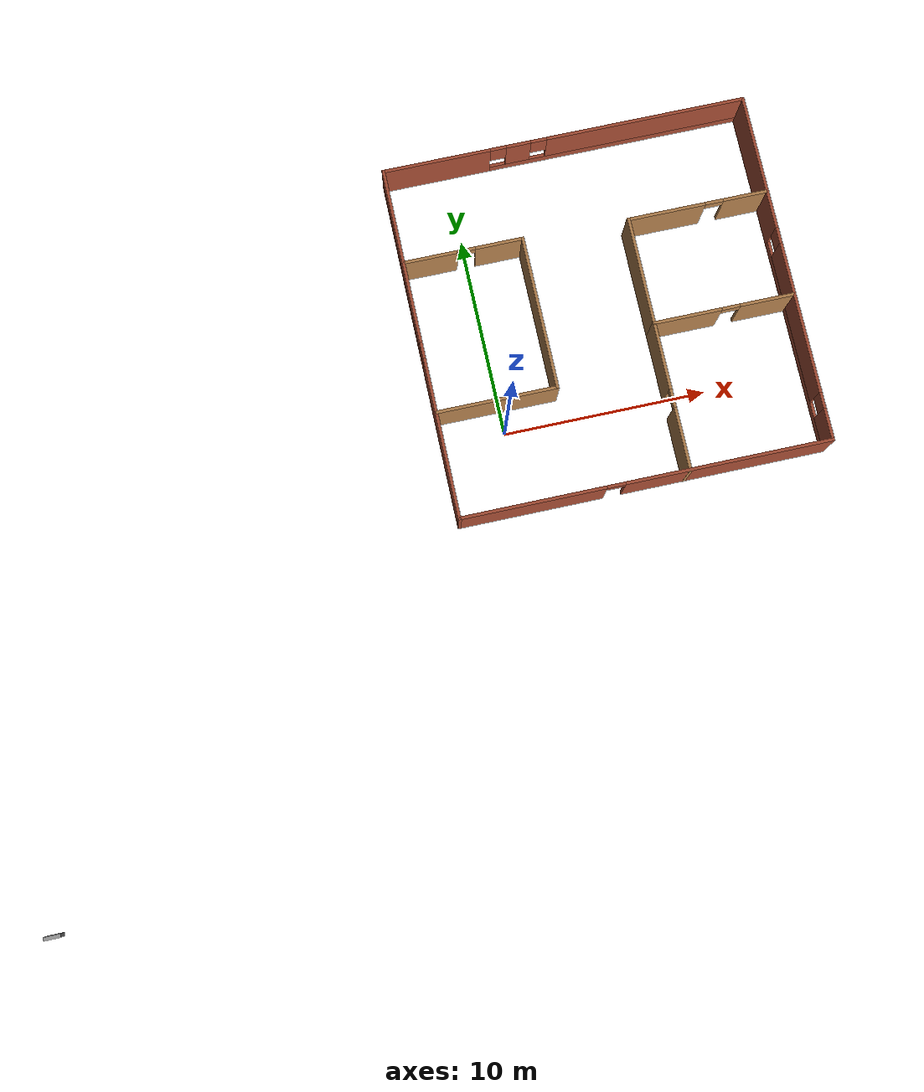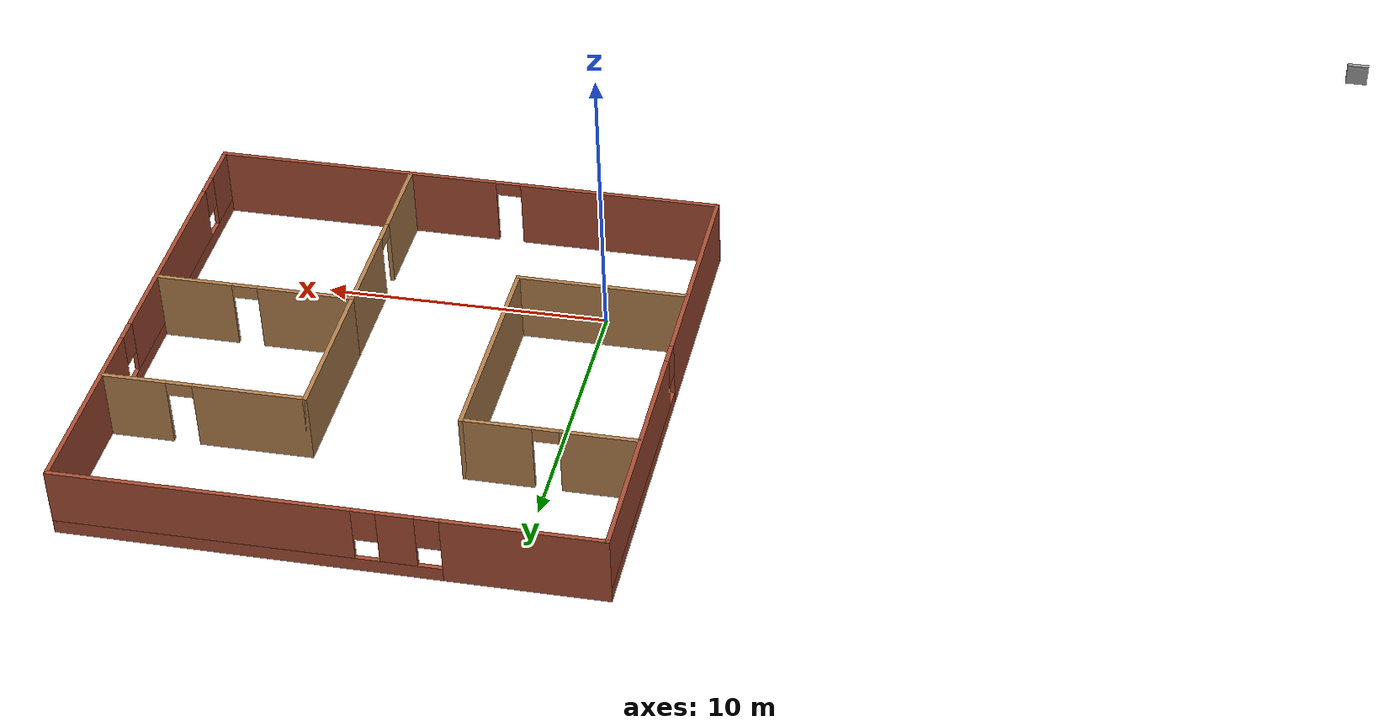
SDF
<?xml version='1.0'?>
<sdf version='1.6'>
  <model name='model'>
    <pose frame=''>5.88 4.74639 0 0 -0 0</pose>
    <link name='Wall_0'>
      <pose frame=''>-9.05 0.003615 0 0 -0 1.5708</pose>
      <visual name='Wall_0_Visual_0'>
        <pose frame=''>-4.85577 0 1.25 0 -0 0</pose>
        <geometry>
          <box>
            <size>8.03845 0.15 2.5</size>
          </box>
        </geometry>
        <material>
          <script>
            <uri>file://media/materials/scripts/gazebo.material</uri>
            <name>Gazebo/Bricks</name>
          </script>
          <ambient>0.435294 0.796078 0.67451 1</ambient>
        </material>
        <meta>
          <layer>0</layer>
        </meta>
      </visual>
      <collision name='Wall_0_Collision_0'>
        <geometry>
          <box>
            <size>8.03845 0.15 2.5</size>
          </box>
        </geometry>
        <pose frame=''>-4.85577 0 1.25 0 -0 0</pose>
      </collision>
      <visual name='Wall_0_Visual_1'>
        <pose frame=''>4.01923 0 0.25 0 -0 0</pose>
        <geometry>
          <box>
            <size>9.71155 0.15 0.5</size>
          </box>
        </geometry>
        <material>
          <script>
            <uri>file://media/materials/scripts/gazebo.material</uri>
            <name>Gazebo/Bricks</name>
          </script>
          <ambient>0.435294 0.796078 0.67451 1</ambient>
        </material>
        <meta>
          <layer>0</layer>
        </meta>
      </visual>
      <collision name='Wall_0_Collision_1'>
        <geometry>
          <box>
            <size>9.71155 0.15 0.5</size>
          </box>
        </geometry>
        <pose frame=''>4.01923 0 0.25 0 -0 0</pose>
      </collision>
      <visual name='Wall_0_Visual_2'>
        <pose frame=''>4.41923 0 1.5 0 -0 0</pose>
        <geometry>
          <box>
            <size>8.91155 0.15 2</size>
          </box>
        </geometry>
        <material>
          <script>
            <uri>file://media/materials/scripts/gazebo.material</uri>
            <name>Gazebo/Bricks</name>
          </script>
          <ambient>0.435294 0.796078 0.67451 1</ambient>
        </material>
        <meta>
          <layer>0</layer>
        </meta>
      </visual>
      <collision name='Wall_0_Collision_2'>
        <geometry>
          <box>
            <size>8.91155 0.15 2</size>
          </box>
        </geometry>
        <pose frame=''>4.41923 0 1.5 0 -0 0</pose>
      </collision>
      <visual name='Wall_0_Visual_3'>
        <pose frame=''>-0.436546 0 1.9 0 -0 0</pose>
        <geometry>
          <box>
            <size>0.8 0.15 1.2</size>
          </box>
        </geometry>
        <material>
          <script>
            <uri>file://media/materials/scripts/gazebo.material</uri>
            <name>Gazebo/Bricks</name>
          </script>
          <ambient>0.435294 0.796078 0.67451 1</ambient>
        </material>
        <meta>
          <layer>0</layer>
        </meta>
      </visual>
      <collision name='Wall_0_Collision_3'>
        <geometry>
          <box>
            <size>0.8 0.15 1.2</size>
          </box>
        </geometry>
        <pose frame=''>-0.436546 0 1.9 0 -0 0</pose>
      </collision>
    </link>
    <link name='Wall_1'>
      <pose frame=''>0 8.80362 0 0 -0 0</pose>
      <visual name='Wall_1_Visual_0'>
        <pose frame=''>-6.41646 0 1.25 0 -0 0</pose>
        <geometry>
          <box>
            <size>5.41707 0.15 2.5</size>
          </box>
        </geometry>
        <material>
          <script>
            <uri>file://media/materials/scripts/gazebo.material</uri>
            <name>Gazebo/Bricks</name>
          </script>
          <ambient>0.435294 0.796078 0.67451 1</ambient>
        </material>
        <meta>
          <layer>0</layer>
        </meta>
      </visual>
      <collision name='Wall_1_Collision_0'>
        <geometry>
          <box>
            <size>5.41707 0.15 2.5</size>
          </box>
        </geometry>
        <pose frame=''>-6.41646 0 1.25 0 -0 0</pose>
      </collision>
      <visual name='Wall_1_Visual_1'>
        <pose frame=''>2.70853 0 0.25 0 -0 0</pose>
        <geometry>
          <box>
            <size>12.8329 0.15 0.5</size>
          </box>
        </geometry>
        <material>
          <script>
            <uri>file://media/materials/scripts/gazebo.material</uri>
            <name>Gazebo/Bricks</name>
          </script>
          <ambient>0.435294 0.796078 0.67451 1</ambient>
        </material>
        <meta>
          <layer>0</layer>
        </meta>
      </visual>
      <collision name='Wall_1_Collision_1'>
        <geometry>
          <box>
            <size>12.8329 0.15 0.5</size>
          </box>
        </geometry>
        <pose frame=''>2.70853 0 0.25 0 -0 0</pose>
      </collision>
      <visual name='Wall_1_Visual_2'>
        <pose frame=''>-2.29029 0 1.5 0 -0 0</pose>
        <geometry>
          <box>
            <size>1.23528 0.15 2</size>
          </box>
        </geometry>
        <material>
          <script>
            <uri>file://media/materials/scripts/gazebo.material</uri>
            <name>Gazebo/Bricks</name>
          </script>
          <ambient>0.435294 0.796078 0.67451 1</ambient>
        </material>
        <meta>
          <layer>0</layer>
        </meta>
      </visual>
      <collision name='Wall_1_Collision_2'>
        <geometry>
          <box>
            <size>1.23528 0.15 2</size>
          </box>
        </geometry>
        <pose frame=''>-2.29029 0 1.5 0 -0 0</pose>
      </collision>
      <visual name='Wall_1_Visual_3'>
        <pose frame=''>4.12618 0 1.5 0 -0 0</pose>
        <geometry>
          <box>
            <size>9.99765 0.15 2</size>
          </box>
        </geometry>
        <material>
          <script>
            <uri>file://media/materials/scripts/gazebo.material</uri>
            <name>Gazebo/Bricks</name>
          </script>
          <ambient>0.435294 0.796078 0.67451 1</ambient>
        </material>
        <meta>
          <layer>0</layer>
        </meta>
      </visual>
      <collision name='Wall_1_Collision_3'>
        <geometry>
          <box>
            <size>9.99765 0.15 2</size>
          </box>
        </geometry>
        <pose frame=''>4.12618 0 1.5 0 -0 0</pose>
      </collision>
      <visual name='Wall_1_Visual_4'>
        <pose frame=''>-3.30793 0 1.9 0 -0 0</pose>
        <geometry>
          <box>
            <size>0.8 0.15 1.2</size>
          </box>
        </geometry>
        <material>
          <script>
            <uri>file://media/materials/scripts/gazebo.material</uri>
            <name>Gazebo/Bricks</name>
          </script>
          <ambient>0.435294 0.796078 0.67451 1</ambient>
        </material>
        <meta>
          <layer>0</layer>
        </meta>
      </visual>
      <collision name='Wall_1_Collision_4'>
        <geometry>
          <box>
            <size>0.8 0.15 1.2</size>
          </box>
        </geometry>
        <pose frame=''>-3.30793 0 1.9 0 -0 0</pose>
      </collision>
      <visual name='Wall_1_Visual_5'>
        <pose frame=''>-1.27265 0 1.9 0 -0 0</pose>
        <geometry>
          <box>
            <size>0.8 0.15 1.2</size>
          </box>
        </geometry>
        <material>
          <script>
            <uri>file://media/materials/scripts/gazebo.material</uri>
            <name>Gazebo/Bricks</name>
          </script>
          <ambient>0.435294 0.796078 0.67451 1</ambient>
        </material>
        <meta>
          <layer>0</layer>
        </meta>
      </visual>
      <collision name='Wall_1_Collision_5'>
        <geometry>
          <box>
            <size>0.8 0.15 1.2</size>
          </box>
        </geometry>
        <pose frame=''>-1.27265 0 1.9 0 -0 0</pose>
      </collision>
    </link>
    <link name='Wall_10'>
      <collision name='Wall_10_Collision'>
        <geometry>
          <box>
            <size>6 0.15 2.5</size>
          </box>
        </geometry>
        <pose frame=''>0 0 1.25 0 -0 0</pose>
      </collision>
      <visual name='Wall_10_Visual'>
        <pose frame=''>0 0 1.25 0 -0 0</pose>
        <geometry>
          <box>
            <size>6 0.15 2.5</size>
          </box>
        </geometry>
        <material>
          <script>
            <uri>file://media/materials/scripts/gazebo.material</uri>
            <name>Gazebo/Wood</name>
          </script>
          <ambient>0.435294 0.796078 0.67451 1</ambient>
        </material>
        <meta>
          <layer>0</layer>
        </meta>
      </visual>
      <pose frame=''>-6.06707 -3.56479 0 0 -0 3.14159</pose>
    </link>
    <link name='Wall_12'>
      <collision name='Wall_12_Collision'>
        <geometry>
          <box>
            <size>5.5 0.15 2.5</size>
          </box>
        </geometry>
        <pose frame=''>0 0 1.25 0 -0 0</pose>
      </collision>
      <visual name='Wall_12_Visual'>
        <pose frame=''>0 0 1.25 0 -0 0</pose>
        <geometry>
          <box>
            <size>5.5 0.15 2.5</size>
          </box>
        </geometry>
        <material>
          <script>
            <uri>file://media/materials/scripts/gazebo.material</uri>
            <name>Gazebo/Wood</name>
          </script>
          <ambient>0.435294 0.796078 0.67451 1</ambient>
        </material>
        <meta>
          <layer>0</layer>
        </meta>
      </visual>
      <pose frame=''>2.10751 1.22138 0 0 -0 1.5708</pose>
    </link>
    <link name='Wall_13'>
      <pose frame=''>5.53251 3.89638 0 0 -0 0</pose>
      <visual name='Wall_13_Visual_0'>
        <pose frame=''>-1.54991 0 1.25 0 -0 0</pose>
        <geometry>
          <box>
            <size>3.90017 0.15 2.5</size>
          </box>
        </geometry>
        <material>
          <script>
            <uri>file://media/materials/scripts/gazebo.material</uri>
            <name>Gazebo/Wood</name>
          </script>
          <ambient>0.435294 0.796078 0.67451 1</ambient>
        </material>
        <meta>
          <layer>0</layer>
        </meta>
      </visual>
      <collision name='Wall_13_Collision_0'>
        <geometry>
          <box>
            <size>3.90017 0.15 2.5</size>
          </box>
        </geometry>
        <pose frame=''>-1.54991 0 1.25 0 -0 0</pose>
      </collision>
      <visual name='Wall_13_Visual_1'>
        <pose frame=''>2.40008 0 1.25 0 -0 0</pose>
        <geometry>
          <box>
            <size>2.19983 0.15 2.5</size>
          </box>
        </geometry>
        <material>
          <script>
            <uri>file://media/materials/scripts/gazebo.material</uri>
            <name>Gazebo/Wood</name>
          </script>
          <ambient>0.435294 0.796078 0.67451 1</ambient>
        </material>
        <meta>
          <layer>0</layer>
        </meta>
      </visual>
      <collision name='Wall_13_Collision_1'>
        <geometry>
          <box>
            <size>2.19983 0.15 2.5</size>
          </box>
        </geometry>
        <pose frame=''>2.40008 0 1.25 0 -0 0</pose>
      </collision>
      <visual name='Wall_13_Visual_2'>
        <pose frame=''>0.850169 0 2.25 0 -0 0</pose>
        <geometry>
          <box>
            <size>0.9 0.15 0.5</size>
          </box>
        </geometry>
        <material>
          <script>
            <uri>file://media/materials/scripts/gazebo.material</uri>
            <name>Gazebo/Wood</name>
          </script>
          <ambient>0.435294 0.796078 0.67451 1</ambient>
        </material>
        <meta>
          <layer>0</layer>
        </meta>
      </visual>
      <collision name='Wall_13_Collision_2'>
        <geometry>
          <box>
            <size>0.9 0.15 0.5</size>
          </box>
        </geometry>
        <pose frame=''>0.850169 0 2.25 0 -0 0</pose>
      </collision>
    </link>
    <link name='Wall_2'>
      <pose frame=''>9.05 0.003615 0 0 0 -1.5708</pose>
      <visual name='Wall_2_Visual_0'>
        <pose frame=''>-5.42619 0 1.25 0 -0 0</pose>
        <geometry>
          <box>
            <size>6.89762 0.15 2.5</size>
          </box>
        </geometry>
        <material>
          <script>
            <uri>file://media/materials/scripts/gazebo.material</uri>
            <name>Gazebo/Bricks</name>
          </script>
          <ambient>0.435294 0.796078 0.67451 1</ambient>
        </material>
        <meta>
          <layer>0</layer>
        </meta>
      </visual>
      <collision name='Wall_2_Collision_0'>
        <geometry>
          <box>
            <size>6.89762 0.15 2.5</size>
          </box>
        </geometry>
        <pose frame=''>-5.42619 0 1.25 0 -0 0</pose>
      </collision>
      <visual name='Wall_2_Visual_1'>
        <pose frame=''>3.44881 0 0.25 0 -0 0</pose>
        <geometry>
          <box>
            <size>10.8524 0.15 0.5</size>
          </box>
        </geometry>
        <material>
          <script>
            <uri>file://media/materials/scripts/gazebo.material</uri>
            <name>Gazebo/Bricks</name>
          </script>
          <ambient>0.435294 0.796078 0.67451 1</ambient>
        </material>
        <meta>
          <layer>0</layer>
        </meta>
      </visual>
      <collision name='Wall_2_Collision_1'>
        <geometry>
          <box>
            <size>10.8524 0.15 0.5</size>
          </box>
        </geometry>
        <pose frame=''>3.44881 0 0.25 0 -0 0</pose>
      </collision>
      <visual name='Wall_2_Visual_2'>
        <pose frame=''>2.63355 0 1.5 0 -0 0</pose>
        <geometry>
          <box>
            <size>7.62186 0.15 2</size>
          </box>
        </geometry>
        <material>
          <script>
            <uri>file://media/materials/scripts/gazebo.material</uri>
            <name>Gazebo/Bricks</name>
          </script>
          <ambient>0.435294 0.796078 0.67451 1</ambient>
        </material>
        <meta>
          <layer>0</layer>
        </meta>
      </visual>
      <collision name='Wall_2_Collision_2'>
        <geometry>
          <box>
            <size>7.62186 0.15 2</size>
          </box>
        </geometry>
        <pose frame=''>2.63355 0 1.5 0 -0 0</pose>
      </collision>
      <visual name='Wall_2_Visual_3'>
        <pose frame=''>8.05974 0 1.5 0 -0 0</pose>
        <geometry>
          <box>
            <size>1.63052 0.15 2</size>
          </box>
        </geometry>
        <material>
          <script>
            <uri>file://media/materials/scripts/gazebo.material</uri>
            <name>Gazebo/Bricks</name>
          </script>
          <ambient>0.435294 0.796078 0.67451 1</ambient>
        </material>
        <meta>
          <layer>0</layer>
        </meta>
      </visual>
      <collision name='Wall_2_Collision_3'>
        <geometry>
          <box>
            <size>1.63052 0.15 2</size>
          </box>
        </geometry>
        <pose frame=''>8.05974 0 1.5 0 -0 0</pose>
      </collision>
      <visual name='Wall_2_Visual_4'>
        <pose frame=''>-1.57738 0 1.9 0 -0 0</pose>
        <geometry>
          <box>
            <size>0.8 0.15 1.2</size>
          </box>
        </geometry>
        <material>
          <script>
            <uri>file://media/materials/scripts/gazebo.material</uri>
            <name>Gazebo/Bricks</name>
          </script>
          <ambient>0.435294 0.796078 0.67451 1</ambient>
        </material>
        <meta>
          <layer>0</layer>
        </meta>
      </visual>
      <collision name='Wall_2_Collision_4'>
        <geometry>
          <box>
            <size>0.8 0.15 1.2</size>
          </box>
        </geometry>
        <pose frame=''>-1.57738 0 1.9 0 -0 0</pose>
      </collision>
      <visual name='Wall_2_Visual_5'>
        <pose frame=''>6.84448 0 1.9 0 -0 0</pose>
        <geometry>
          <box>
            <size>0.8 0.15 1.2</size>
          </box>
        </geometry>
        <material>
          <script>
            <uri>file://media/materials/scripts/gazebo.material</uri>
            <name>Gazebo/Bricks</name>
          </script>
          <ambient>0.435294 0.796078 0.67451 1</ambient>
        </material>
        <meta>
          <layer>0</layer>
        </meta>
      </visual>
      <collision name='Wall_2_Collision_5'>
        <geometry>
          <box>
            <size>0.8 0.15 1.2</size>
          </box>
        </geometry>
        <pose frame=''>6.84448 0 1.9 0 -0 0</pose>
      </collision>
    </link>
    <link name='Wall_3'>
      <pose frame=''>0 -8.79639 0 0 -0 3.14159</pose>
      <visual name='Wall_3_Visual_0'>
        <pose frame=''>-4.04253 0 1.25 0 -0 0</pose>
        <geometry>
          <box>
            <size>10.1649 0.15 2.5</size>
          </box>
        </geometry>
        <material>
          <script>
            <uri>file://media/materials/scripts/gazebo.material</uri>
            <name>Gazebo/Bricks</name>
          </script>
          <ambient>0.435294 0.796078 0.67451 1</ambient>
        </material>
        <meta>
          <layer>0</layer>
        </meta>
      </visual>
      <collision name='Wall_3_Collision_0'>
        <geometry>
          <box>
            <size>10.1649 0.15 2.5</size>
          </box>
        </geometry>
        <pose frame=''>-4.04253 0 1.25 0 -0 0</pose>
      </collision>
      <visual name='Wall_3_Visual_1'>
        <pose frame=''>5.53247 0 1.25 0 -0 0</pose>
        <geometry>
          <box>
            <size>7.18507 0.15 2.5</size>
          </box>
        </geometry>
        <material>
          <script>
            <uri>file://media/materials/scripts/gazebo.material</uri>
            <name>Gazebo/Bricks</name>
          </script>
          <ambient>0.435294 0.796078 0.67451 1</ambient>
        </material>
        <meta>
          <layer>0</layer>
        </meta>
      </visual>
      <collision name='Wall_3_Collision_1'>
        <geometry>
          <box>
            <size>7.18507 0.15 2.5</size>
          </box>
        </geometry>
        <pose frame=''>5.53247 0 1.25 0 -0 0</pose>
      </collision>
      <visual name='Wall_3_Visual_2'>
        <pose frame=''>1.48993 0 2.25 0 -0 0</pose>
        <geometry>
          <box>
            <size>0.9 0.15 0.5</size>
          </box>
        </geometry>
        <material>
          <script>
            <uri>file://media/materials/scripts/gazebo.material</uri>
            <name>Gazebo/Bricks</name>
          </script>
          <ambient>0.435294 0.796078 0.67451 1</ambient>
        </material>
        <meta>
          <layer>0</layer>
        </meta>
      </visual>
      <collision name='Wall_3_Collision_2'>
        <geometry>
          <box>
            <size>0.9 0.15 0.5</size>
          </box>
        </geometry>
        <pose frame=''>1.48993 0 2.25 0 -0 0</pose>
      </collision>
    </link>
    <link name='Wall_5'>
      <pose frame=''>2.10751 -5.12861 0 0 -0 1.5708</pose>
      <visual name='Wall_5_Visual_0'>
        <pose frame=''>-2.16276 0 1.25 0 -0 0</pose>
        <geometry>
          <box>
            <size>3.17448 0.15 2.5</size>
          </box>
        </geometry>
        <material>
          <script>
            <uri>file://media/materials/scripts/gazebo.material</uri>
            <name>Gazebo/Wood</name>
          </script>
          <ambient>0.435294 0.796078 0.67451 1</ambient>
        </material>
        <meta>
          <layer>0</layer>
        </meta>
      </visual>
      <collision name='Wall_5_Collision_0'>
        <geometry>
          <box>
            <size>3.17448 0.15 2.5</size>
          </box>
        </geometry>
        <pose frame=''>-2.16276 0 1.25 0 -0 0</pose>
      </collision>
      <visual name='Wall_5_Visual_1'>
        <pose frame=''>2.03724 0 1.25 0 -0 0</pose>
        <geometry>
          <box>
            <size>3.42552 0.15 2.5</size>
          </box>
        </geometry>
        <material>
          <script>
            <uri>file://media/materials/scripts/gazebo.material</uri>
            <name>Gazebo/Wood</name>
          </script>
          <ambient>0.435294 0.796078 0.67451 1</ambient>
        </material>
        <meta>
          <layer>0</layer>
        </meta>
      </visual>
      <collision name='Wall_5_Collision_1'>
        <geometry>
          <box>
            <size>3.42552 0.15 2.5</size>
          </box>
        </geometry>
        <pose frame=''>2.03724 0 1.25 0 -0 0</pose>
      </collision>
      <visual name='Wall_5_Visual_2'>
        <pose frame=''>-0.125525 0 2.25 0 -0 0</pose>
        <geometry>
          <box>
            <size>0.9 0.15 0.5</size>
          </box>
        </geometry>
        <material>
          <script>
            <uri>file://media/materials/scripts/gazebo.material</uri>
            <name>Gazebo/Wood</name>
          </script>
          <ambient>0.435294 0.796078 0.67451 1</ambient>
        </material>
        <meta>
          <layer>0</layer>
        </meta>
      </visual>
      <collision name='Wall_5_Collision_2'>
        <geometry>
          <box>
            <size>0.9 0.15 0.5</size>
          </box>
        </geometry>
        <pose frame=''>-0.125525 0 2.25 0 -0 0</pose>
      </collision>
    </link>
    <link name='Wall_6'>
      <pose frame=''>5.53251 -1.45362 0 0 -0 0</pose>
      <visual name='Wall_6_Visual_0'>
        <pose frame=''>-1.79403 0 1.25 0 -0 0</pose>
        <geometry>
          <box>
            <size>3.41195 0.15 2.5</size>
          </box>
        </geometry>
        <material>
          <script>
            <uri>file://media/materials/scripts/gazebo.material</uri>
            <name>Gazebo/Wood</name>
          </script>
          <ambient>0.435294 0.796078 0.67451 1</ambient>
        </material>
        <meta>
          <layer>0</layer>
        </meta>
      </visual>
      <collision name='Wall_6_Collision_0'>
        <geometry>
          <box>
            <size>3.41195 0.15 2.5</size>
          </box>
        </geometry>
        <pose frame=''>-1.79403 0 1.25 0 -0 0</pose>
      </collision>
      <visual name='Wall_6_Visual_1'>
        <pose frame=''>2.15597 0 1.25 0 -0 0</pose>
        <geometry>
          <box>
            <size>2.68805 0.15 2.5</size>
          </box>
        </geometry>
        <material>
          <script>
            <uri>file://media/materials/scripts/gazebo.material</uri>
            <name>Gazebo/Wood</name>
          </script>
          <ambient>0.435294 0.796078 0.67451 1</ambient>
        </material>
        <meta>
          <layer>0</layer>
        </meta>
      </visual>
      <collision name='Wall_6_Collision_1'>
        <geometry>
          <box>
            <size>2.68805 0.15 2.5</size>
          </box>
        </geometry>
        <pose frame=''>2.15597 0 1.25 0 -0 0</pose>
      </collision>
      <visual name='Wall_6_Visual_2'>
        <pose frame=''>0.361946 0 2.25 0 -0 0</pose>
        <geometry>
          <box>
            <size>0.9 0.15 0.5</size>
          </box>
        </geometry>
        <material>
          <script>
            <uri>file://media/materials/scripts/gazebo.material</uri>
            <name>Gazebo/Wood</name>
          </script>
          <ambient>0.435294 0.796078 0.67451 1</ambient>
        </material>
        <meta>
          <layer>0</layer>
        </meta>
      </visual>
      <collision name='Wall_6_Collision_2'>
        <geometry>
          <box>
            <size>0.9 0.15 0.5</size>
          </box>
        </geometry>
        <pose frame=''>0.361946 0 2.25 0 -0 0</pose>
      </collision>
    </link>
    <link name='Wall_8'>
      <pose frame=''>-6.06707 4.03521 0 0 -0 0</pose>
      <visual name='Wall_8_Visual_0'>
        <pose frame=''>-1.66395 0 1.25 0 -0 0</pose>
        <geometry>
          <box>
            <size>2.6721 0.15 2.5</size>
          </box>
        </geometry>
        <material>
          <script>
            <uri>file://media/materials/scripts/gazebo.material</uri>
            <name>Gazebo/Wood</name>
          </script>
          <ambient>0.435294 0.796078 0.67451 1</ambient>
        </material>
        <meta>
          <layer>0</layer>
        </meta>
      </visual>
      <collision name='Wall_8_Collision_0'>
        <geometry>
          <box>
            <size>2.6721 0.15 2.5</size>
          </box>
        </geometry>
        <pose frame=''>-1.66395 0 1.25 0 -0 0</pose>
      </collision>
      <visual name='Wall_8_Visual_1'>
        <pose frame=''>1.78605 0 1.25 0 -0 0</pose>
        <geometry>
          <box>
            <size>2.4279 0.15 2.5</size>
          </box>
        </geometry>
        <material>
          <script>
            <uri>file://media/materials/scripts/gazebo.material</uri>
            <name>Gazebo/Wood</name>
          </script>
          <ambient>0.435294 0.796078 0.67451 1</ambient>
        </material>
        <meta>
          <layer>0</layer>
        </meta>
      </visual>
      <collision name='Wall_8_Collision_1'>
        <geometry>
          <box>
            <size>2.4279 0.15 2.5</size>
          </box>
        </geometry>
        <pose frame=''>1.78605 0 1.25 0 -0 0</pose>
      </collision>
      <visual name='Wall_8_Visual_2'>
        <pose frame=''>0.122101 0 2.25 0 -0 0</pose>
        <geometry>
          <box>
            <size>0.9 0.15 0.5</size>
          </box>
        </geometry>
        <material>
          <script>
            <uri>file://media/materials/scripts/gazebo.material</uri>
            <name>Gazebo/Wood</name>
          </script>
          <ambient>0.435294 0.796078 0.67451 1</ambient>
        </material>
        <meta>
          <layer>0</layer>
        </meta>
      </visual>
      <collision name='Wall_8_Collision_2'>
        <geometry>
          <box>
            <size>0.9 0.15 0.5</size>
          </box>
        </geometry>
        <pose frame=''>0.122101 0 2.25 0 -0 0</pose>
      </collision>
    </link>
    <link name='Wall_9'>
      <collision name='Wall_9_Collision'>
        <geometry>
          <box>
            <size>7.75 0.15 2.5</size>
          </box>
        </geometry>
        <pose frame=''>0 0 1.25 0 -0 0</pose>
      </collision>
      <visual name='Wall_9_Visual'>
        <pose frame=''>0 0 1.25 0 -0 0</pose>
        <geometry>
          <box>
            <size>7.75 0.15 2.5</size>
          </box>
        </geometry>
        <material>
          <script>
            <uri>file://media/materials/scripts/gazebo.material</uri>
            <name>Gazebo/Wood</name>
          </script>
          <ambient>0.435294 0.796078 0.67451 1</ambient>
        </material>
        <meta>
          <layer>0</layer>
        </meta>
      </visual>
      <pose frame=''>-3.14207 0.235214 0 0 0 -1.5708</pose>
    </link>
    <link name='Window_3'>
      <collision name='Window_3_Collision'>
        <geometry>
          <box>
            <size>0.8 0.17 0.8</size>
          </box>
        </geometry>
        <pose frame=''>0 0 0.4 0 -0 0</pose>
      </collision>
      <visual name='Window_3_Visual'>
        <pose frame=''>0 0 0.4 0 -0 0</pose>
        <geometry>
          <box>
            <size>0.8 0.17 0.8</size>
          </box>
        </geometry>
        <material>
          <script>
            <uri>file://media/materials/scripts/gazebo.material</uri>
            <name>Gazebo/Grey</name>
          </script>
        </material>
      </visual>
      <pose frame=''>-31.2142 -23.6078 0.5 0 -0 0</pose>
    </link>
    <static>1</static>
  </model>
</sdf>
